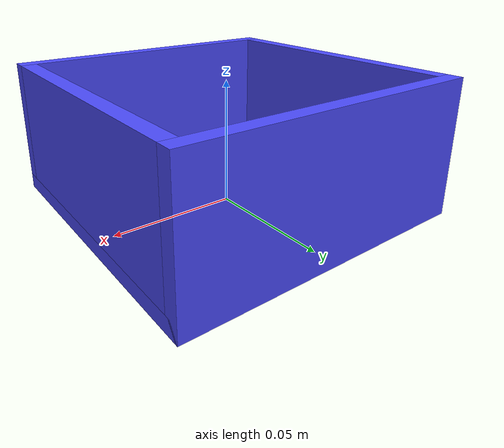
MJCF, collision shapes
<?xml version="1.0" encoding="UTF-8"?>
<mujoco model="box_base">
    <compiler angle="radian" inertiafromgeom="auto" inertiagrouprange="1 5" />

    <asset>
        <texture name="T_boxmetal" type="cube" file="textures/metal1.png" />
        <texture name="T_boxwood" type="cube" file="textures/wood1.png" />

        <material name="box_col" rgba="0.3 0.3 1.0 0.5" shininess="0" specular="0" />
        <material name="box_red" rgba=".8 0 0 1" shininess="1" reflectance=".7" specular=".5" />
        <material name="box_blue" rgba="0 0 .8 1" shininess="1" reflectance=".7" specular=".5" />
        <material name="box_metal" rgba=".35 .35 .35 1" texture="T_boxmetal" shininess="1" reflectance=".7" specular=".5" />
        <material name="box_wood" texture="T_boxwood" shininess="1" reflectance=".7" specular=".5" />
    </asset>

    <default>
        <default class="box_base">
            <joint armature="0.001" damping="2" limited="true" />
            <geom conaffinity="0" contype="0" group="1" type="mesh" />
            <default class="box_viz">
                <geom condim="4" type="mesh" />
            </default>
            <default class="box_col">
                <geom conaffinity="1" condim="3" contype="0" group="4" material="box_col" solimp="0.99 0.99 0.01" solref="0.01 1" />
            </default>
            <default class="top_col">
                <geom conaffinity="1" condim="4" contype="1" group="4" material="box_col" solimp="0.99 0.99 0.01" solref="0.01 1" />
            </default>
            <site type="sphere" size=".01" rgba="0 1 0 1" group="5" />
        </default>
    </default>

    <asset>
        <mesh file="metaworld/bin/bin.stl" name="bin" scale="0.6 0.6 0.9" />
        <mesh file="metaworld/box/boxtop.stl" name="boxtop" scale="0.6 0.6 0.6" />
        <mesh file="metaworld/box/boxhandle.stl" name="boxhandle" scale="0.6 0.6 0.6" />
    </asset>

    <worldbody>
        <body childclass="box_base" name="box" pos="0 0 0" euler="0 0 0">
            <geom material="box_wood" mesh="bin" pos="0 0 0.027" />
            <site name="box_goal" pos="0 0 0.026" size="0.02" rgba="0 0.8 0 1" group="5" />
            <geom class="box_col" pos="0 -0.057 0.027" size="0.06 0.003 0.027" type="box" />
            <geom class="box_col" pos="0 0.057 0.027" size="0.06 0.003 0.027" type="box" />
            <geom class="box_col" pos="0.057 0 0.027" size="0.003 0.054 0.027" type="box" />
            <geom class="box_col" pos="-0.057 0 0.027" size="0.003 0.054 0.027" type="box" />
            <geom class="box_col" pos="0 0 0.003" size="0.06 0.06 0.003" type="box" />
        </body>
    </worldbody>
</mujoco>
